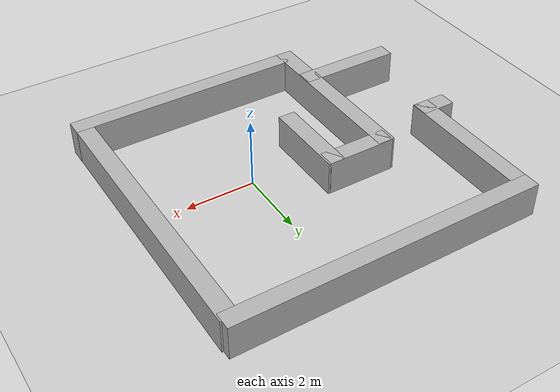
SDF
<sdf version='1.10'>
  <world name='empty'>
    <physics name='1ms' type='ignored'>
      <max_step_size>0.001</max_step_size>
      <real_time_factor>1</real_time_factor>
      <real_time_update_rate>1000</real_time_update_rate>
    </physics>
    <plugin name='gz::sim::systems::Physics' filename='gz-sim-physics-system'/>
    <plugin name='gz::sim::systems::UserCommands' filename='gz-sim-user-commands-system'/>
    <plugin name='gz::sim::systems::SceneBroadcaster' filename='gz-sim-scene-broadcaster-system'/>
    <plugin name='gz::sim::systems::Contact' filename='gz-sim-contact-system'/>
    <plugin name='gz::sim::systems::Sensors' filename='gz-sim-sensors-system'>
      <render_engine>ogre2</render_engine>
    </plugin>
    <plugin name='gz::sim::systems::Imu' filename='gz-sim-imu-system'/>
    <gravity>0 0 -9.8000000000000007</gravity>
    <magnetic_field>5.5644999999999998e-06 2.2875799999999999e-05 -4.2388400000000002e-05</magnetic_field>
    <atmosphere type='adiabatic'/>
    <scene>
      <ambient>0.400000006 0.400000006 0.400000006 1</ambient>
      <background>0.699999988 0.699999988 0.699999988 1</background>
      <shadows>true</shadows>
    </scene>
    <model name='ground_plane'>
      <static>true</static>
      <pose>0 0 0 0 0 0</pose>
      <link name='link'>
        <collision name='collision'>
          <geometry>
            <plane>
              <normal>0 0 1</normal>
              <size>100 100</size>
            </plane>
          </geometry>
        </collision>
        <visual name='visual'>
          <geometry>
            <plane>
              <normal>0 0 1</normal>
              <size>100 100</size>
            </plane>
          </geometry>
          <material>
            <ambient>0.8 0.8 0.8 1</ambient>
            <diffuse>0.8 0.8 0.8 1</diffuse>
            <specular>0.8 0.8 0.8 1</specular>
          </material>
        </visual>
      </link>
    </model>
    <model name='box'>
      <pose>0.036406699568033218 -3.6081414222717285 0.5 0 0 0</pose>
      <link name='box_link'>
        <inertial>
          <inertia>
            <ixx>0.16666</ixx>
            <ixy>0</ixy>
            <ixz>0</ixz>
            <iyy>0.16666</iyy>
            <iyz>0</iyz>
            <izz>0.16666</izz>
          </inertia>
          <mass>1</mass>
          <pose>0 0 0 0 0 0</pose>
        </inertial>
        <collision name='box_collision'>
          <geometry>
            <box>
              <size>7 0.5 1</size>
            </box>
          </geometry>
          <surface>
            <friction>
              <ode/>
            </friction>
            <bounce/>
            <contact/>
          </surface>
        </collision>
        <visual name='box_visual'>
          <geometry>
            <box>
              <size>7 0.5 1</size>
            </box>
          </geometry>
          <material>
            <ambient>0.300000012 0.300000012 0.300000012 1</ambient>
            <diffuse>0.699999988 0.699999988 0.699999988 1</diffuse>
            <specular>1 1 1 1</specular>
          </material>
        </visual>
        <pose>0 0 0 0 0 0</pose>
        <enable_wind>false</enable_wind>
      </link>
      <static>true</static>
      <self_collide>false</self_collide>
    </model>
    <model name='box_0'>
      <pose>3.2858872413635254 0.4600003063678742 0.5 0 0 1.5700000841906609</pose>
      <link name='box_link'>
        <inertial>
          <inertia>
            <ixx>0.16666</ixx>
            <ixy>0</ixy>
            <ixz>0</ixz>
            <iyy>0.16666</iyy>
            <iyz>0</iyz>
            <izz>0.16666</izz>
          </inertia>
          <mass>1</mass>
          <pose>0 0 0 0 0 0</pose>
        </inertial>
        <collision name='box_collision'>
          <geometry>
            <box>
              <size>8.5 0.5 1</size>
            </box>
          </geometry>
          <surface>
            <friction>
              <ode/>
            </friction>
            <bounce/>
            <contact/>
          </surface>
        </collision>
        <visual name='box_visual'>
          <geometry>
            <box>
              <size>8.5 0.5 1</size>
            </box>
          </geometry>
          <material>
            <ambient>0.300000012 0.300000012 0.300000012 1</ambient>
            <diffuse>0.699999988 0.699999988 0.699999988 1</diffuse>
            <specular>1 1 1 1</specular>
          </material>
        </visual>
        <pose>0 0 0 0 0 0</pose>
        <enable_wind>false</enable_wind>
      </link>
      <static>true</static>
      <self_collide>false</self_collide>
    </model>
    <model name='box_1'>
      <pose>-1.7287000417709351 0.20594565570354462 0.5 0 0 0</pose>
      <link name='box_link'>
        <inertial>
          <inertia>
            <ixx>0.16666</ixx>
            <ixy>0</ixy>
            <ixz>0</ixz>
            <iyy>0.16666</iyy>
            <iyz>0</iyz>
            <izz>0.16666</izz>
          </inertia>
          <mass>1</mass>
          <pose>0 0 0 0 0 0</pose>
        </inertial>
        <collision name='box_collision'>
          <geometry>
            <box>
              <size>0.5 2.5 1</size>
            </box>
          </geometry>
          <surface>
            <friction>
              <ode/>
            </friction>
            <bounce/>
            <contact/>
          </surface>
        </collision>
        <visual name='box_visual'>
          <geometry>
            <box>
              <size>0.5 2.5 1</size>
            </box>
          </geometry>
          <material>
            <ambient>0.300000012 0.300000012 0.300000012 1</ambient>
            <diffuse>0.699999988 0.699999988 0.699999988 1</diffuse>
            <specular>1 1 1 1</specular>
          </material>
        </visual>
        <pose>0 0 0 0 0 0</pose>
        <enable_wind>false</enable_wind>
      </link>
      <static>true</static>
      <self_collide>false</self_collide>
    </model>
    <model name='box_2'>
      <pose>-2.5374617576599121 1.2135000228881836 0.5 0 0 0</pose>
      <link name='box_link'>
        <inertial>
          <inertia>
            <ixx>0.16666</ixx>
            <ixy>0</ixy>
            <ixz>0</ixz>
            <iyy>0.16666</iyy>
            <iyz>0</iyz>
            <izz>0.16666</izz>
          </inertia>
          <mass>1</mass>
          <pose>0 0 0 0 0 0</pose>
        </inertial>
        <collision name='box_collision'>
          <geometry>
            <box>
              <size>2 0.5 1</size>
            </box>
          </geometry>
          <surface>
            <friction>
              <ode/>
            </friction>
            <bounce/>
            <contact/>
          </surface>
        </collision>
        <visual name='box_visual'>
          <geometry>
            <box>
              <size>2 0.5 1</size>
            </box>
          </geometry>
          <material>
            <ambient>0.300000012 0.300000012 0.300000012 1</ambient>
            <diffuse>0.699999988 0.699999988 0.699999988 1</diffuse>
            <specular>1 1 1 1</specular>
          </material>
        </visual>
        <pose>0 0 0 0 0 0</pose>
        <enable_wind>false</enable_wind>
      </link>
      <static>true</static>
      <self_collide>false</self_collide>
    </model>
    <model name='box_3'>
      <pose>-3.3610403537750249 -1.2120223045349123 0.5 0 0 1.5700000841906609</pose>
      <link name='box_link'>
        <inertial>
          <inertia>
            <ixx>0.16666</ixx>
            <ixy>0</ixy>
            <ixz>0</ixz>
            <iyy>0.16666</iyy>
            <iyz>0</iyz>
            <izz>0.16666</izz>
          </inertia>
          <mass>1</mass>
          <pose>0 0 0 0 0 0</pose>
        </inertial>
        <collision name='box_collision'>
          <geometry>
            <box>
              <size>5.2999999999999998 0.5 1</size>
            </box>
          </geometry>
          <surface>
            <friction>
              <ode/>
            </friction>
            <bounce/>
            <contact/>
          </surface>
        </collision>
        <visual name='box_visual'>
          <geometry>
            <box>
              <size>5.2999999999999998 0.5 1</size>
            </box>
          </geometry>
          <material>
            <ambient>0.300000012 0.300000012 0.300000012 1</ambient>
            <diffuse>0.699999988 0.699999988 0.699999988 1</diffuse>
            <specular>1 1 1 1</specular>
          </material>
        </visual>
        <pose>0 0 0 0 0 0</pose>
        <enable_wind>false</enable_wind>
      </link>
      <static>true</static>
      <self_collide>false</self_collide>
    </model>
    <model name='box_4'>
      <pose>-1.0055831670761108 4.7180399894714355 0.5 0 0 0</pose>
      <link name='box_link'>
        <inertial>
          <inertia>
            <ixx>0.16666</ixx>
            <ixy>0</ixy>
            <ixz>0</ixz>
            <iyy>0.16666</iyy>
            <iyz>0</iyz>
            <izz>0.16666</izz>
          </inertia>
          <mass>1</mass>
          <pose>0 0 0 0 0 0</pose>
        </inertial>
        <collision name='box_collision'>
          <geometry>
            <box>
              <size>9 0.5 1</size>
            </box>
          </geometry>
          <surface>
            <friction>
              <ode/>
            </friction>
            <bounce/>
            <contact/>
          </surface>
        </collision>
        <visual name='box_visual'>
          <geometry>
            <box>
              <size>9 0.5 1</size>
            </box>
          </geometry>
          <material>
            <ambient>0.300000012 0.300000012 0.300000012 1</ambient>
            <diffuse>0.699999988 0.699999988 0.699999988 1</diffuse>
            <specular>1 1 1 1</specular>
          </material>
        </visual>
        <pose>0 0 0 0 0 0</pose>
        <enable_wind>false</enable_wind>
      </link>
      <static>true</static>
      <self_collide>false</self_collide>
    </model>
    <model name='box_5'>
      <pose>-5.2520055770874032 2.4798119068145756 0.5 0 0 1.5700000841906609</pose>
      <link name='box_link'>
        <inertial>
          <inertia>
            <ixx>0.16666</ixx>
            <ixy>0</ixy>
            <ixz>0</ixz>
            <iyy>0.16666</iyy>
            <iyz>0</iyz>
            <izz>0.16666</izz>
          </inertia>
          <mass>1</mass>
          <pose>0 0 0 0 0 0</pose>
        </inertial>
        <collision name='box_collision'>
          <geometry>
            <box>
              <size>4 0.5 1</size>
            </box>
          </geometry>
          <surface>
            <friction>
              <ode/>
            </friction>
            <bounce/>
            <contact/>
          </surface>
        </collision>
        <visual name='box_visual'>
          <geometry>
            <box>
              <size>4 0.5 1</size>
            </box>
          </geometry>
          <material>
            <ambient>0.300000012 0.300000012 0.300000012 1</ambient>
            <diffuse>0.699999988 0.699999988 0.699999988 1</diffuse>
            <specular>1 1 1 1</specular>
          </material>
        </visual>
        <pose>0 0 0 0 0 0</pose>
        <enable_wind>false</enable_wind>
      </link>
      <static>true</static>
      <self_collide>false</self_collide>
    </model>
    <model name='box_6'>
      <pose>-4.6432772116022027 -2.3334112200792876 0.5 0 0 0</pose>
      <link name='box_link'>
        <inertial>
          <inertia>
            <ixx>0.16666</ixx>
            <ixy>0</ixy>
            <ixz>0</ixz>
            <iyy>0.16666</iyy>
            <iyz>0</iyz>
            <izz>0.16666</izz>
          </inertia>
          <mass>1</mass>
          <pose>0 0 0 0 0 0</pose>
        </inertial>
        <collision name='box_collision'>
          <geometry>
            <box>
              <size>3 0.5 1</size>
            </box>
          </geometry>
          <surface>
            <friction>
              <ode/>
            </friction>
            <bounce/>
            <contact/>
          </surface>
        </collision>
        <visual name='box_visual'>
          <geometry>
            <box>
              <size>3 0.5 1</size>
            </box>
          </geometry>
          <material>
            <ambient>0.300000012 0.300000012 0.300000012 1</ambient>
            <diffuse>0.699999988 0.699999988 0.699999988 1</diffuse>
            <specular>1 1 1 1</specular>
          </material>
        </visual>
        <pose>0 0 0 0 0 0</pose>
        <enable_wind>false</enable_wind>
      </link>
      <static>true</static>
      <self_collide>false</self_collide>
    </model>
    <model name='box_7'>
      <pose>-5.5235137939453125 0.73837602138519287 0.5 0 0 0</pose>
      <link name='box_link'>
        <inertial>
          <inertia>
            <ixx>0.16666</ixx>
            <ixy>0</ixy>
            <ixz>0</ixz>
            <iyy>0.16666</iyy>
            <iyz>0</iyz>
            <izz>0.16666</izz>
          </inertia>
          <mass>1</mass>
          <pose>0 0 0 0 0 0</pose>
        </inertial>
        <collision name='box_collision'>
          <geometry>
            <box>
              <size>1 0.5 1</size>
            </box>
          </geometry>
          <surface>
            <friction>
              <ode/>
            </friction>
            <bounce/>
            <contact/>
          </surface>
        </collision>
        <visual name='box_visual'>
          <geometry>
            <box>
              <size>1 0.5 1</size>
            </box>
          </geometry>
          <material>
            <ambient>0.300000012 0.300000012 0.300000012 1</ambient>
            <diffuse>0.699999988 0.699999988 0.699999988 1</diffuse>
            <specular>1 1 1 1</specular>
          </material>
        </visual>
        <pose>0 0 0 0 0 0</pose>
        <enable_wind>false</enable_wind>
      </link>
      <static>true</static>
      <self_collide>false</self_collide>
    </model>
    <light name='sun' type='directional'>
      <pose>0 0 10 0 0 0</pose>
      <cast_shadows>true</cast_shadows>
      <intensity>1</intensity>
      <direction>-0.5 0.10000000000000001 -0.90000000000000002</direction>
      <diffuse>0.800000012 0.800000012 0.800000012 1</diffuse>
      <specular>0.200000003 0.200000003 0.200000003 1</specular>
      <attenuation>
        <range>1000</range>
        <linear>0.01</linear>
        <constant>0.90000000000000002</constant>
        <quadratic>0.001</quadratic>
      </attenuation>
      <spot>
        <inner_angle>0</inner_angle>
        <outer_angle>0</outer_angle>
        <falloff>0</falloff>
      </spot>
    </light>
  </world>
</sdf>
